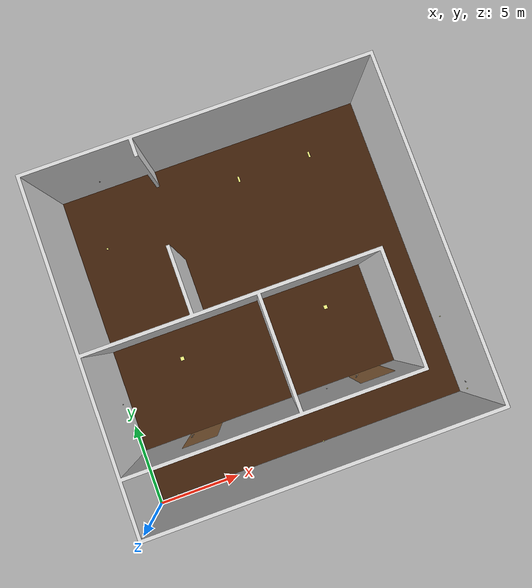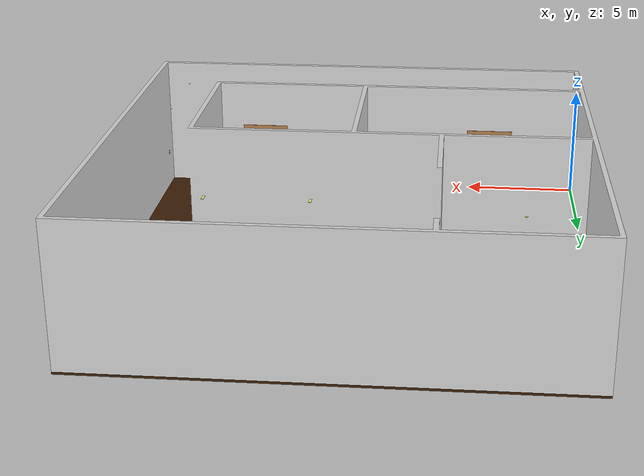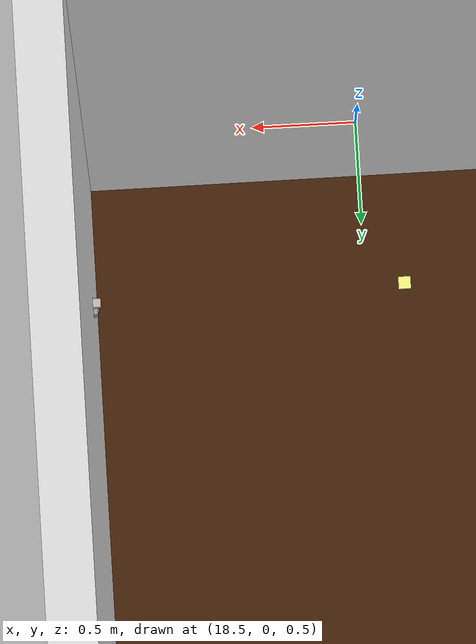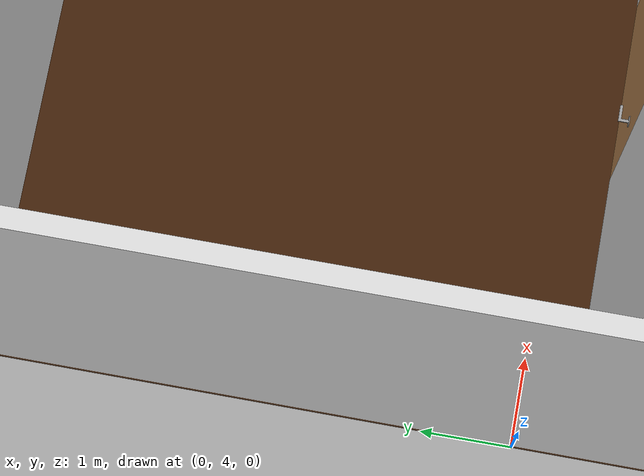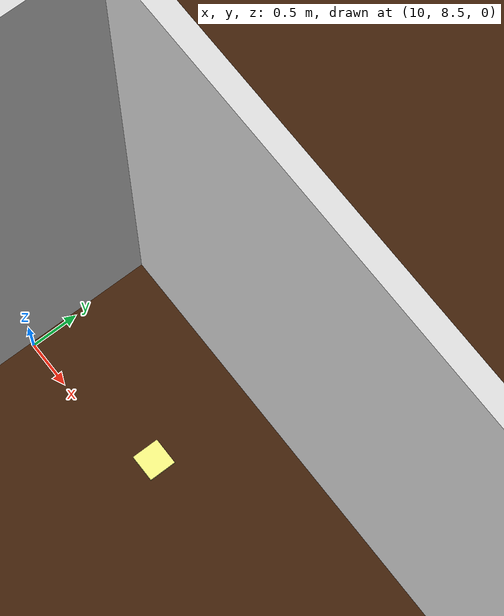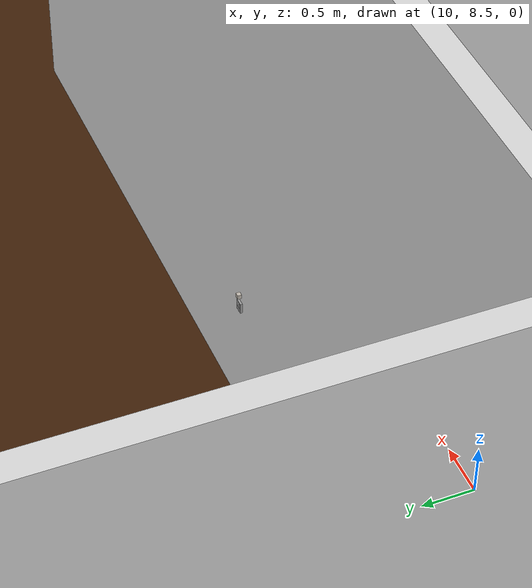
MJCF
<?xml version='1.0' encoding='utf-8'?>
<mujoco model="indoor_space_urdf">
  <compiler angle="radian" />

  <asset>
    <mesh name="room_base_link" content_type="model/stl" file="../../indoor_space_urdf_description/meshes/base_link.stl" scale="0.001 0.001 0.001" />
    <mesh name="wall_1" content_type="model/stl" file="../../indoor_space_urdf_description/meshes/wall_1.stl" scale="0.001 0.001 0.001" />
    <mesh name="door_1_1" content_type="model/stl" file="../../indoor_space_urdf_description/meshes/door_1_1.stl" scale="0.001 0.001 0.001" />
    <mesh name="door_2_1" content_type="model/stl" file="../../indoor_space_urdf_description/meshes/door_2_1.stl" scale="0.001 0.001 0.001" />
    <mesh name="latch_1_1" content_type="model/stl" file="../../indoor_space_urdf_description/meshes/latch_1_1.stl" scale="0.001 0.001 0.001" />
    <mesh name="latch_2_1" content_type="model/stl" file="../../indoor_space_urdf_description/meshes/latch_2_1.stl" scale="0.001 0.001 0.001" />
    <mesh name="door_handle_1_1" content_type="model/stl" file="../../indoor_space_urdf_description/meshes/door_handle_1_1.stl" scale="0.001 0.001 0.001" />
    <mesh name="toggle_switch_case_living-room_1" content_type="model/stl" file="../../indoor_space_urdf_description/meshes/toggle_switch_case_living-room_1.stl" scale="0.001 0.001 0.001" />
    <mesh name="toggle_switch_case_corridor_1" content_type="model/stl" file="../../indoor_space_urdf_description/meshes/toggle_switch_case_corridor_1.stl" scale="0.001 0.001 0.001" />
    <mesh name="toggle_switch_H20_corridor-lamp_2_1" content_type="model/stl" file="../../indoor_space_urdf_description/meshes/toggle_switch_H20_corridor-lamp_2_1.stl" scale="0.001 0.001 0.001" />
    <mesh name="door_handle_2_1" content_type="model/stl" file="../../indoor_space_urdf_description/meshes/door_handle_2_1.stl" scale="0.001 0.001 0.001" />
    <mesh name="toggle_switch_H20_corridor-lamp_3_1" content_type="model/stl" file="../../indoor_space_urdf_description/meshes/toggle_switch_H20_corridor-lamp_3_1.stl" scale="0.001 0.001 0.001" />
    <mesh name="toggle_switch_H20_corridor-lamp_4_1" content_type="model/stl" file="../../indoor_space_urdf_description/meshes/toggle_switch_H20_corridor-lamp_4_1.stl" scale="0.001 0.001 0.001" />
    <mesh name="toggle_switch_case_kitchen_1" content_type="model/stl" file="../../indoor_space_urdf_description/meshes/toggle_switch_case_kitchen_1.stl" scale="0.001 0.001 0.001" />
    <mesh name="toggle_switch_H80_kitchen-lamp_1_1" content_type="model/stl" file="../../indoor_space_urdf_description/meshes/toggle_switch_H80_kitchen-lamp_1_1.stl" scale="0.001 0.001 0.001" />
    <mesh name="toggle_switch_H40_living-room-lamp_1_1" content_type="model/stl" file="../../indoor_space_urdf_description/meshes/toggle_switch_H40_living-room-lamp_1_1.stl" scale="0.001 0.001 0.001" />
    <mesh name="toggle_switch_H40_living-room-lamp_2_1" content_type="model/stl" file="../../indoor_space_urdf_description/meshes/toggle_switch_H40_living-room-lamp_2_1.stl" scale="0.001 0.001 0.001" />
    <mesh name="toggle_switch_H20_corridor-lamp_1_1" content_type="model/stl" file="../../indoor_space_urdf_description/meshes/toggle_switch_H20_corridor-lamp_1_1.stl" scale="0.001 0.001 0.001" />
    <mesh name="toggle_switch_case_room_1_1" content_type="model/stl" file="../../indoor_space_urdf_description/meshes/toggle_switch_case_room_1_1.stl" scale="0.001 0.001 0.001" />
    <mesh name="toggle_switch_H80_room-ramp_1_1" content_type="model/stl" file="../../indoor_space_urdf_description/meshes/toggle_switch_H80_room-ramp_1_1.stl" scale="0.001 0.001 0.001" />
    <mesh name="key_switch_case_room_2_1" content_type="model/stl" file="../../indoor_space_urdf_description/meshes/key_switch_case_room_2_1.stl" scale="0.001 0.001 0.001" />
    <mesh name="key_switch_room-ramp_2_1" content_type="model/stl" file="../../indoor_space_urdf_description/meshes/key_switch_room-ramp_2_1.stl" scale="0.001 0.001 0.001" />
    <mesh name="ceiling_v1_1" content_type="model/stl" file="../../indoor_space_urdf_description/meshes/ceiling_v1_1.stl" scale="0.001 0.001 0.001" />
  <texture name="tex_wood" type="2d" builtin="checker" rgb1="0.3 0.15 0.05" rgb2="0.2 0.1 0.02" width="512" height="512" mark="edge" markrgb="0.1 0.05 0.01" /><material name="mat_wood" texture="tex_wood" texrepeat="20 20" reflectance="0.1" /><material name="mat_lamp" rgba="0.95 0.95 0.5 1" emission="1.0" /><texture name="tex_qr" type="2d" builtin="checker" rgb1="0 0 0" rgb2="1 1 1" width="128" height="128" mark="none" /><material name="mat_qr" texture="tex_qr" texrepeat="5 5" emission="0.5" /><texture name="tex_qr_switch_case_1" type="cube" file="../../indoor_space_urdf_description/meshes/qr_codes/switch_case_1.png" /><material name="mat_qr_switch_case_1" texture="tex_qr_switch_case_1" emission="0.5" /><texture name="tex_qr_switch_case_2" type="cube" file="../../indoor_space_urdf_description/meshes/qr_codes/switch_case_2.png" /><material name="mat_qr_switch_case_2" texture="tex_qr_switch_case_2" emission="0.5" /><texture name="tex_qr_switch_case_3" type="cube" file="../../indoor_space_urdf_description/meshes/qr_codes/switch_case_3.png" /><material name="mat_qr_switch_case_3" texture="tex_qr_switch_case_3" emission="0.5" /><texture name="tex_qr_switch_case_4" type="cube" file="../../indoor_space_urdf_description/meshes/qr_codes/switch_case_4.png" /><material name="mat_qr_switch_case_4" texture="tex_qr_switch_case_4" emission="0.5" /><texture name="tex_qr_switch_case_5" type="cube" file="../../indoor_space_urdf_description/meshes/qr_codes/switch_case_5.png" /><material name="mat_qr_switch_case_5" texture="tex_qr_switch_case_5" emission="0.5" /></asset>

  <worldbody>
    <geom type="mesh" mesh="room_base_link" material="mat_wood" />
    <geom type="mesh" mesh="wall_1" rgba="0.85 0.85 0.85 1" />
    <geom pos="0 0 0" quat="1 0 0 0" type="mesh" mesh="toggle_switch_case_living-room_1" rgba="0.6 0.6 0.6 1" />
    <geom pos="0 0 0" type="mesh" mesh="toggle_switch_case_corridor_1" rgba="0.6 0.6 0.6 1" />
    <geom pos="0 0 0" quat="1 0 0 0" type="mesh" mesh="toggle_switch_case_kitchen_1" rgba="0.6 0.6 0.6 1" />
    <geom pos="0 0 0" quat="1 0 0 0" type="mesh" mesh="toggle_switch_case_room_1_1" rgba="0.6 0.6 0.6 1" />
    <geom pos="0 0 0" type="mesh" mesh="key_switch_case_room_2_1" rgba="0.6 0.6 0.6 1" />
    <geom type="mesh" mesh="ceiling_v1_1" group="3" rgba="0.85 0.85 0.85 1" />
    <geom size="0.025 0.025 0.01" pos="2.5 1.5 5.45" type="box" material="mat_lamp" />
    <geom size="0.025 0.025 0.01" pos="10.5 1.5 5.45" type="box" material="mat_lamp" />
    <geom size="0.025 0.025 0.01" pos="18.5 1.5 5.45" type="box" material="mat_lamp" />
    <geom size="0.025 0.025 0.01" pos="18.5 5.5 5.45" type="box" material="mat_lamp" />
    <geom size="0.1 0.1 0.01" pos="5 8 5.45" type="box" material="mat_lamp" />
    <geom size="0.1 0.1 0.01" pos="13 8 5.45" type="box" material="mat_lamp" />
    <geom size="0.05 0.15 0.01" pos="11 16 5.45" type="box" material="mat_lamp" />
    <geom size="0.05 0.15 0.01" pos="15 16 5.45" type="box" material="mat_lamp" />
    <geom size="0.05 0.01" pos="3 15 4.6875" type="cylinder" material="mat_lamp" />
    <body name="door_1_1" pos="5.2 3.4 2.1">
      <inertial pos="-1.02357 -0.025 0.000844161" quat="0.707107 -0.000251454 -0.000251454 0.707107" mass="3205.02" diaginertia="5378.26 4258.48 1121.11" />
      <joint name="door_1_1_joint" pos="0 0 0" axis="0 0 1" range="-2.79253 0" actuatorfrcrange="-100 100" limited="true" frictionloss="0.5" damping="2.0" />
      <geom pos="-5.2 -3.4 -2.1" quat="1 0 0 0" type="mesh" mesh="door_1_1" rgba="0.7 0.5 0.3 1" />
      <body name="latch_1_1" pos="1.325 -3.25 -0.29">
        <inertial pos="-3.37218 3.226 -0.08" quat="0.529897 0.529897 0.468198 0.468198" mass="0.630692" diaginertia="0.000296862 0.000208 0.000174138" />
        <joint name="latch_1_1_joint" pos="0 0 0" axis="1 0 0" type="slide" range="0 0.04" actuatorfrcrange="-100 100" limited="true" frictionloss="0.5" damping="1.0" stiffness="50.0" springref="0" />
        <geom pos="-6.525 -0.15 -1.81" quat="1 0 0 0" type="mesh" mesh="latch_1_1" rgba="0.6 0.6 0.6 1" />
      </body>
      <body name="door_handle_1_1" pos="-1.8 -0.05 -0.595">
        <inertial pos="0.0174026 0.025 0.00083086" quat="0.495559 0.495559 -0.504402 0.504402" mass="7.30752" diaginertia="0.0511667 0.0392913 0.0191" />
        <joint name="door_handle_1_1_joint" pos="0 0 0" axis="0 1 0" range="0 0.785398" actuatorfrcrange="-100 100" limited="true" frictionloss="0.1" damping="0.5" stiffness="50.0" springref="0" />
        <geom pos="-3.4 -3.35 -1.505" quat="1 0 0 0" type="mesh" mesh="door_handle_1_1" rgba="0.6 0.6 0.6 1" />
      </body>
    </body>
    <body name="door_2_1" pos="15.6 3.4 2.1">
      <inertial pos="-1.02357 -0.025 0.000844161" quat="0.707107 -0.000251454 -0.000251454 0.707107" mass="3205.02" diaginertia="5378.26 4258.48 1121.11" />
      <joint name="door_2_1_joint" pos="0 0 0" axis="0 0 1" range="-2.00713 0" actuatorfrcrange="-100 100" limited="true" frictionloss="0.5" damping="2.0" />
      <geom pos="-15.6 -3.4 -2.1" quat="1 0 0 0" type="mesh" mesh="door_2_1" rgba="0.7 0.5 0.3 1" />
      <body name="latch_2_1" pos="1.325 -13.65 -0.29">
        <inertial pos="-3.3722 13.626 -0.08" quat="0.529897 0.529897 0.468198 0.468198" mass="0.630692" diaginertia="0.000296862 0.000208 0.000174138" />
        <joint name="latch_2_1_joint" pos="0 0 0" axis="1 0 0" type="slide" range="0 0.04" actuatorfrcrange="-100 100" limited="true" frictionloss="0.5" damping="1.0" stiffness="50.0" springref="0" />
        <geom pos="-16.925 10.25 -1.81" quat="1 0 0 0" type="mesh" mesh="latch_2_1" rgba="0.6 0.6 0.6 1" />
      </body>
      <body name="door_handle_2_1" pos="-1.8 -0.05 -0.595">
        <inertial pos="0.0174026 0.025 0.00083086" quat="0.495559 0.495559 -0.504402 0.504402" mass="7.30752" diaginertia="0.0511667 0.0392913 0.0191" />
        <joint name="door_handle_2_1_joint" pos="0 0 0" axis="0 1 0" range="0 0.785398" actuatorfrcrange="-100 100" limited="true" frictionloss="0.1" damping="0.5" stiffness="50.0" springref="0" />
        <geom pos="-13.8 -3.35 -1.505" quat="1 0 0 0" type="mesh" mesh="door_handle_2_1" rgba="0.6 0.6 0.6 1" />
      </body>
    </body>
    <body name="toggle_switch_H40_living-room-lamp_1_1" pos="11.6 10.015 1.26">
      <inertial pos="4.87775e-09 0.00158461 0.02" quat="0.5 0.5 0.5 0.5" mass="0.300252" diaginertia="0.000113 8.4e-05 5e-05" />
      <joint name="toggle_switch_H40_living-room-lamp_1_1_joint" pos="4.87775e-09 0.00158461 0.02" axis="0 0 1" range="-0.1309 0.1309" actuatorfrcrange="-100 100" limited="true" frictionloss="0.2" damping="0.1" />
      <geom pos="-11.6 -10.015 -1.26" quat="1 0 0 0" type="mesh" mesh="toggle_switch_H40_living-room-lamp_1_1" rgba="0.6 0.6 0.6 1" />
    </body>
    <body name="toggle_switch_H40_living-room-lamp_2_1" pos="23.161 11.26 -8.665">
      <inertial pos="-11.561 -1.24342 9.985" quat="0.5 0.5 0.5 0.5" mass="0.300252" diaginertia="0.000113 8.4e-05 5e-05" />
      <joint name="toggle_switch_H40_living-room-lamp_2_1_joint" pos="-11.561 -1.24342 9.985" axis="0 0 1" range="-0.1309 0.1309" actuatorfrcrange="-100 100" limited="true" frictionloss="0.2" damping="0.1" />
      <geom pos="-23.161 -11.26 8.665" quat="1 0 0 0" type="mesh" mesh="toggle_switch_H40_living-room-lamp_2_1" rgba="0.6 0.6 0.6 1" />
    </body>
    <body name="toggle_switch_H20_corridor-lamp_2_1" pos="18.14 20.746 0.75">
      <inertial pos="1.64347 -19.7458 0.94" quat="0.531491 0.466387 -0.531491 0.466387" mass="0.14938" diaginertia="4.2e-05 4.15242e-05 1.04758e-05" />
      <joint name="toggle_switch_H20_corridor-lamp_2_1_joint" pos="1.64347 -19.7458 0.94" axis="0 0 1" range="-0.1309 0.1309" actuatorfrcrange="-100 100" limited="true" frictionloss="0.2" damping="0.1" />
      <geom pos="-18.14 -20.746 -0.75" quat="1 0 0 0" type="mesh" mesh="toggle_switch_H20_corridor-lamp_2_1" rgba="0.6 0.6 0.6 1" />
    </body>
    <body name="toggle_switch_H20_corridor-lamp_3_1" pos="18.14 20.746 0.75">
      <inertial pos="1.64347 -19.7458 0.96" quat="0.531491 0.466387 -0.531491 0.466387" mass="0.14938" diaginertia="4.2e-05 4.15242e-05 1.04758e-05" />
      <joint name="toggle_switch_H20_corridor-lamp_3_1_joint" pos="1.64347 -19.7458 0.96" axis="0 0 1" range="-0.1309 0.1309" actuatorfrcrange="-100 100" limited="true" frictionloss="0.2" damping="0.1" />
      <geom pos="-18.14 -20.746 -0.75" quat="1 0 0 0" type="mesh" mesh="toggle_switch_H20_corridor-lamp_3_1" rgba="0.6 0.6 0.6 1" />
    </body>
    <body name="toggle_switch_H20_corridor-lamp_4_1" pos="18.14 20.746 0.75">
      <inertial pos="1.64347 -19.7458 0.98" quat="0.531491 0.466387 -0.531491 0.466387" mass="0.14938" diaginertia="4.2e-05 4.15242e-05 1.04758e-05" />
      <joint name="toggle_switch_H20_corridor-lamp_4_1_joint" pos="1.64347 -19.7458 0.98" axis="0 0 1" range="-0.1309 0.1309" actuatorfrcrange="-100 100" limited="true" frictionloss="0.2" damping="0.1" />
      <geom pos="-18.14 -20.746 -0.75" quat="1 0 0 0" type="mesh" mesh="toggle_switch_H20_corridor-lamp_4_1" rgba="0.6 0.6 0.6 1" />
    </body>
    <body name="toggle_switch_H20_corridor-lamp_1_1" pos="19.785 1 1.66">
      <inertial pos="-0.0015251 0.000200788 0.01" quat="0.531491 0.466387 -0.531491 0.466387" mass="0.14938" diaginertia="4.2e-05 4.15242e-05 1.04758e-05" />
      <joint name="toggle_switch_H20_corridor-lamp_1_1_joint" pos="-0.0015251 0.000200788 0.01" axis="0 0 1" range="-0.1309 0.1309" actuatorfrcrange="-100 100" limited="true" frictionloss="0.2" damping="0.1" />
      <geom pos="-19.785 -1 -1.66" quat="1 0 0 0" type="mesh" mesh="toggle_switch_H20_corridor-lamp_1_1" rgba="0.6 0.6 0.6 1" />
    </body>
    <body name="toggle_switch_H80_kitchen-lamp_1_1" pos="3.2 19.785 1.66">
      <inertial pos="-4.89003e-09 -0.00160762 0.04" quat="0.707107 0 0 0.707107" mass="0.601995" diaginertia="0.000466 0.000341 0.000168" />
      <joint name="toggle_switch_H80_kitchen-lamp_1_1_joint" pos="-4.89003e-09 -0.00160762 0.04" axis="0 0 -1" range="-0.1309 0.1309" actuatorfrcrange="-100 100" limited="true" frictionloss="0.2" damping="0.1" />
      <geom pos="-3.2 -19.785 -1.66" quat="1 0 0 0" type="mesh" mesh="toggle_switch_H80_kitchen-lamp_1_1" rgba="0.6 0.6 0.6 1" />
    </body>
    <body name="toggle_switch_H80_room-ramp_1_1" pos="11.9 3.415 1.66">
      <inertial pos="0.000209841 0.00159386 0.04" quat="0.751303 0 0 0.659958" mass="0.601995" diaginertia="0.00046608 0.00034092 0.000168" />
      <joint name="toggle_switch_H80_room-ramp_1_1_joint" pos="0.000209841 0.00159386 0.04" axis="0 0 1" range="-0.1309 0.1309" actuatorfrcrange="-100 100" limited="true" frictionloss="0.2" damping="0.1" />
      <geom pos="-11.9 -3.415 -1.66" quat="1 0 0 0" type="mesh" mesh="toggle_switch_H80_room-ramp_1_1" rgba="0.6 0.6 0.6 1" />
    </body>
    <body name="key_switch_room-ramp_2_1" pos="1.9 13.17 1.525">
      <inertial pos="-1.67759 -6.57 0.175" mass="0.146062" diaginertia="2.9e-05 1.7e-05 1.7e-05" />
      <joint name="key_switch_room-ramp_2_1_joint" pos="-1.67759 -6.57 0.175" axis="1 0 0" type="slide" range="0 0.01" actuatorfrcrange="-100 100" limited="true" frictionloss="0.2" damping="0.5" stiffness="10.0" springref="0" />
      <geom pos="-1.9 -13.17 -1.525" type="mesh" mesh="key_switch_room-ramp_2_1" rgba="0.6 0.6 0.6 1" />
    </body>
  <light name="light_lamp_1" pos="2.5 1.5 5.430000000000001" dir="0 0 -1" directional="false" castshadow="true" diffuse="1.2 1.2 0.8" specular="0.5 0.5 0.5" attenuation="1 0 0" cutoff="90" exponent="2" /><light name="light_lamp_2" pos="10.5 1.5 5.430000000000001" dir="0 0 -1" directional="false" castshadow="true" diffuse="1.2 1.2 0.8" specular="0.5 0.5 0.5" attenuation="1 0 0" cutoff="90" exponent="2" /><light name="light_lamp_3" pos="18.5 1.5 5.430000000000001" dir="0 0 -1" directional="false" castshadow="true" diffuse="1.2 1.2 0.8" specular="0.5 0.5 0.5" attenuation="1 0 0" cutoff="90" exponent="2" /><light name="light_lamp_4" pos="18.5 5.5 5.430000000000001" dir="0 0 -1" directional="false" castshadow="true" diffuse="1.2 1.2 0.8" specular="0.5 0.5 0.5" attenuation="1 0 0" cutoff="90" exponent="2" /><light name="light_lamp_5" pos="5.0 8.0 5.430000000000001" dir="0 0 -1" directional="false" castshadow="true" diffuse="1.2 1.2 0.8" specular="0.5 0.5 0.5" attenuation="1 0 0" cutoff="90" exponent="2" /><light name="light_lamp_6" pos="13.0 8.0 5.430000000000001" dir="0 0 -1" directional="false" castshadow="true" diffuse="1.2 1.2 0.8" specular="0.5 0.5 0.5" attenuation="1 0 0" cutoff="90" exponent="2" /><light name="light_lamp_7" pos="11.0 16.0 5.430000000000001" dir="0 0 -1" directional="false" castshadow="true" diffuse="1.2 1.2 0.8" specular="0.5 0.5 0.5" attenuation="1 0 0" cutoff="90" exponent="2" /><light name="light_lamp_8" pos="15.0 16.0 5.430000000000001" dir="0 0 -1" directional="false" castshadow="true" diffuse="1.2 1.2 0.8" specular="0.5 0.5 0.5" attenuation="1 0 0" cutoff="90" exponent="2" /><light name="light_lamp_9" pos="3.0 15.0 4.6675" dir="0 0 -1" directional="false" castshadow="true" diffuse="1.2 1.2 0.8" specular="0.5 0.5 0.5" attenuation="1 0 0" cutoff="90" exponent="2" /><geom name="qr_switch_case_1" type="box" size="0.02 0.02 0.02" pos="11.600000002438875 10.016582305 1.4200000000000004" material="mat_qr_switch_case_1" /><geom name="qr_switch_case_2" type="box" size="0.02 0.02 0.02" pos="19.783471225 1.0002001969999996 1.83" material="mat_qr_switch_case_2" /><geom name="qr_switch_case_3" type="box" size="0.02 0.02 0.02" pos="3.19999999510997 19.78339238 1.8" material="mat_qr_switch_case_3" /><geom name="qr_switch_case_4" type="box" size="0.02 0.02 0.02" pos="11.900209841 3.41659386 1.8" material="mat_qr_switch_case_4" /><geom name="qr_switch_case_5" type="box" size="0.02 0.02 0.02" pos="0.22241 6.6 1.8" material="mat_qr_switch_case_5" /></worldbody>
<contact><exclude body1="toggle_switch_H40_living-room-lamp_1_1" body2="world" /><exclude body1="toggle_switch_H40_living-room-lamp_2_1" body2="world" /><exclude body1="toggle_switch_H20_corridor-lamp_2_1" body2="world" /><exclude body1="toggle_switch_H20_corridor-lamp_3_1" body2="world" /><exclude body1="toggle_switch_H20_corridor-lamp_4_1" body2="world" /><exclude body1="toggle_switch_H20_corridor-lamp_1_1" body2="world" /><exclude body1="toggle_switch_H80_kitchen-lamp_1_1" body2="world" /><exclude body1="toggle_switch_H80_room-ramp_1_1" body2="world" /><exclude body1="key_switch_room-ramp_2_1" body2="world" /><exclude body1="latch_1_1" body2="door_handle_1_1" /><exclude body1="latch_2_1" body2="door_handle_2_1" /></contact><equality><joint joint1="latch_1_1_joint" joint2="door_handle_1_1_joint" polycoef="0 -0.051 0 0 0" /><joint joint1="latch_2_1_joint" joint2="door_handle_2_1_joint" polycoef="0 -0.051 0 0 0" /></equality><actuator><general joint="toggle_switch_H40_living-room-lamp_1_1_joint" biastype="affine" gainprm="0" biasprm="0 10.0 0" /><general joint="toggle_switch_H40_living-room-lamp_2_1_joint" biastype="affine" gainprm="0" biasprm="0 10.0 0" /><general joint="toggle_switch_H20_corridor-lamp_2_1_joint" biastype="affine" gainprm="0" biasprm="0 10.0 0" /><general joint="toggle_switch_H20_corridor-lamp_3_1_joint" biastype="affine" gainprm="0" biasprm="0 10.0 0" /><general joint="toggle_switch_H20_corridor-lamp_4_1_joint" biastype="affine" gainprm="0" biasprm="0 10.0 0" /><general joint="toggle_switch_H20_corridor-lamp_1_1_joint" biastype="affine" gainprm="0" biasprm="0 10.0 0" /><general joint="toggle_switch_H80_kitchen-lamp_1_1_joint" biastype="affine" gainprm="0" biasprm="0 10.0 0" /><general joint="toggle_switch_H80_room-ramp_1_1_joint" biastype="affine" gainprm="0" biasprm="0 10.0 0" /><general joint="key_switch_room-ramp_2_1_joint" biastype="affine" gainprm="0" biasprm="0 10.0 0" /></actuator></mujoco>
